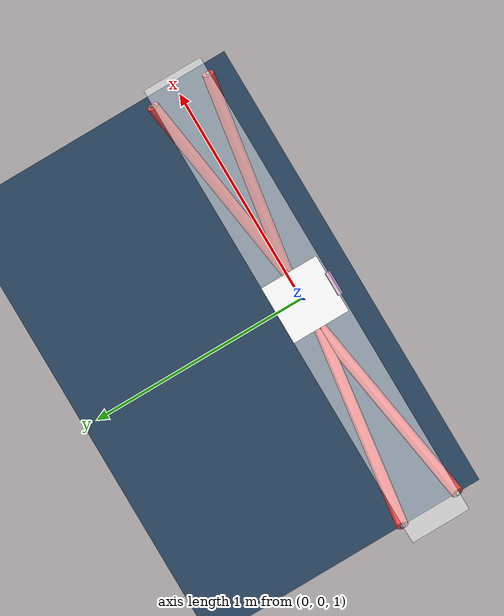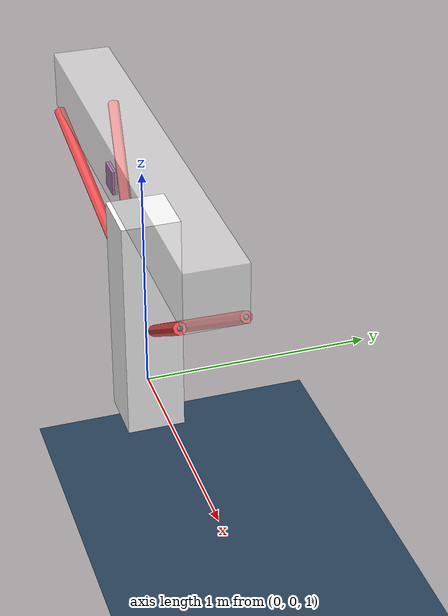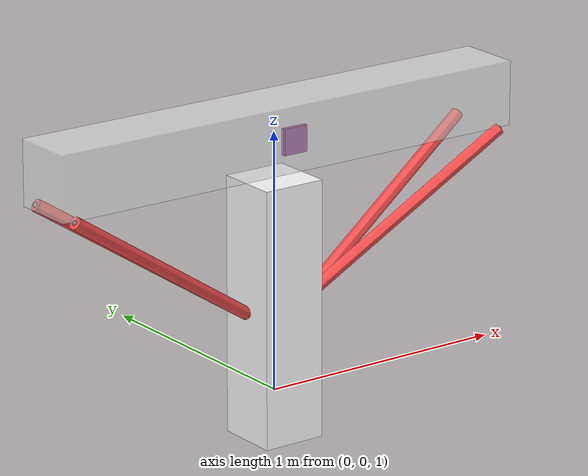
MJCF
<mujoco>
    <!-- Global Options -->
    <option gravity="0 0 -9.81" timestep="0.0001"/>

    <!-- Muscle Class -->
    <default>
        <tendon width="0.025" rgba="0.95 0.3 0.3 1" limited="false"></tendon>
        <default class="muscle">
            <muscle ctrllimited="true" ctrlrange="0 1"></muscle>
        </default>
    </default>

    <!-- Load built-in textures for floor and sky -->
    <asset>
        <texture type="skybox" builtin="gradient" rgb1="0.2 0.2 0.2" rgb2="0 0 0" width="512" height="512"/>
        <texture name="grid" type="2d" builtin="checker" rgb1="0.1 0.2 0.3" rgb2="0.2 0.3 0.4" width="300" height="300"/>
        <material name="grid" texture="grid" texrepeat="8 8" reflectance="0"/>
    </asset>

    <!-- Parent world for everything to go into -->
    <worldbody>
        <!-- Floor geomerty placed in parent world -->
        <geom name="floor" size="10 10 0.01" type="plane" material="grid" pos="0 0 0"/>
        <!-- Placing top-down light in the parent world -->
        <light name="top-down-light" pos="0 0 2" diffuse="1 1 1" directional="true" dir="-0.25 -0.25 -1"/>
        <!-- Placing Camera at Desired Location -->
        <camera name="fixed" pos="0 -3 2" xyaxes="1 0 0 0 0.2 1"/>
        <camera name="Angle2" pos="4 -3 1" xyaxes="1 1.5 0 0 0 1"/>
        <camera name="Angle3" pos="-2 -2 1" xyaxes="1 -1.1 0 0 -.3 1"/>
        <camera name="Angle4" pos="8.396 -12.541 12.182" xyaxes="0.812 0.584 0.000 -0.353 0.491 0.797"/>
        <camera name="Angle5" pos="1.183 -0.425 1.794" xyaxes="0.387 0.922 -0.000 -0.099 0.042 0.994"/>

        <!-- Simulated elements in the world -->
        <body name="StationaryElement" pos="0 0 2">
            <geom name="StationaryElement" type="box" size="1 0.125 0.125" pos="0 0 0" mass="0.5" rgba="1 1 1 0.5" euler="0 0 0"/>

            <!-- End locations for the muscles on stationary body -->
            <site name="Stat-Muscle-R-A" pos="0.95 0.125 -0.130" size="0.01 0.01 0.01"/>
            <site name="Stat-Muscle-R-B" pos="0.95 -0.125 -0.130" size="0.01 0.01 0.01"/>
            <site name="Stat-Muscle-L-A" pos="-0.95 0.125 -0.130" size="0.01 0.01 0.01"/>
            <site name="Stat-Muscle-L-B" pos="-0.95 -0.125 -0.130" size="0.01 0.01 0.01"/>

            <!-- Leg element hanging below -->
            <body name="SwingingElement" pos="0 0 -0.675">
                <geom name="SwingingElement" type="box" size="0.125 0.125 0.5" pos="0 0 0" mass="0.5" rgba="1 1 1 1" euler="0 0 0"/>
                <joint name="ConnectorHinge" type="hinge" pos="0 0 0.675" axis="0 1 0" limited="true" range="-90 90" damping="1"/>

                <!-- End locations for the muscles on the swinging body -->
                <site name="Swing-Muscle-R-A" pos="0.125 0 0" size="0.01 0.01 0.01"/>
                <site name="Swing-Muscle-R-B" pos="0.125 0 0" size="0.01 0.01 0.01"/>
                <site name="Swing-Muscle-L-A" pos="-0.125 0 0" size="0.01 0.01 0.01"/>
                <site name="Swing-Muscle-L-B" pos="-0.125 0 0" size="0.01 0.01 0.01"/>
            </body>

            <!-- Reference block for Front-Of-Model Clarity -->
            <body name="FrontFaceReference" pos="0 -0.125 0">
                <geom name="FrontFaceReference" type="box" size="0.05 0.01 0.05" pos="0 0 0" rgba="0.7 0.5 0.7 1"/>
            </body>

        </body>
    </worldbody>

    <!-- Contact Rules -->
    <contact>
        <exclude body1="StationaryElement" body2="SwingingElement"/>
    </contact>

    <!-- Create the tendon connections -->
    <tendon>
        <!-- Creates tendon for muscle R-A -->
        <spatial name="Tendon-R-A">
            <site site="Stat-Muscle-R-A"/>
            <site site="Swing-Muscle-R-A"/>
        </spatial>
        <!-- Creates tendon for muscle R-B -->
        <spatial name="Tendon-R-B">
            <site site="Stat-Muscle-R-B"/>
            <site site="Swing-Muscle-R-B"/>
        </spatial>
        <!-- Creates tendon for muscle L-A -->
        <spatial name="Tendon-L-A">
            <site site="Stat-Muscle-L-A"/>
            <site site="Swing-Muscle-L-A"/>
        </spatial>
        <!-- Creates tendon for muscle L-B -->
        <spatial name="Tendon-L-B">
            <site site="Stat-Muscle-L-B"/>
            <site site="Swing-Muscle-L-B"/>
        </spatial>

    </tendon>

    <!-- Turns the Tendons into Muscles According to Muscle Class Defined Above -->
    <actuator>
        <muscle name="L-A" tendon="Tendon-L-A" class="muscle"/>
        <muscle name="L-B" tendon="Tendon-L-B" class="muscle"/>
        <muscle name="R-A" tendon="Tendon-R-A" class="muscle"/>
        <muscle name="R-B" tendon="Tendon-R-B" class="muscle"/>
    </actuator>

    <!-- Adds Sensors to the Tendons -->
    <sensor>
        <!-- Length Sensors to all Tendons -->
        <tendonpos name="Len-Tendon-L-A" tendon="Tendon-L-A"/>
        <tendonpos name="Len-Tendon-L-B" tendon="Tendon-L-B"/>
        <tendonpos name="Len-Tendon-R-A" tendon="Tendon-R-A"/>
        <tendonpos name="Len-Tendon-R-B" tendon="Tendon-R-B"/>

        <!-- Velocity Sensors to all Tendons -->
        <tendonvel name="Vel-Tendon-L-A" tendon="Tendon-L-A"/>
        <tendonvel name="Vel-Tendon-L-B" tendon="Tendon-L-B"/>
        <tendonvel name="Vel-Tendon-R-A" tendon="Tendon-R-A"/>
        <tendonvel name="Vel-Tendon-R-B" tendon="Tendon-R-B"/>
    </sensor>

</mujoco>
